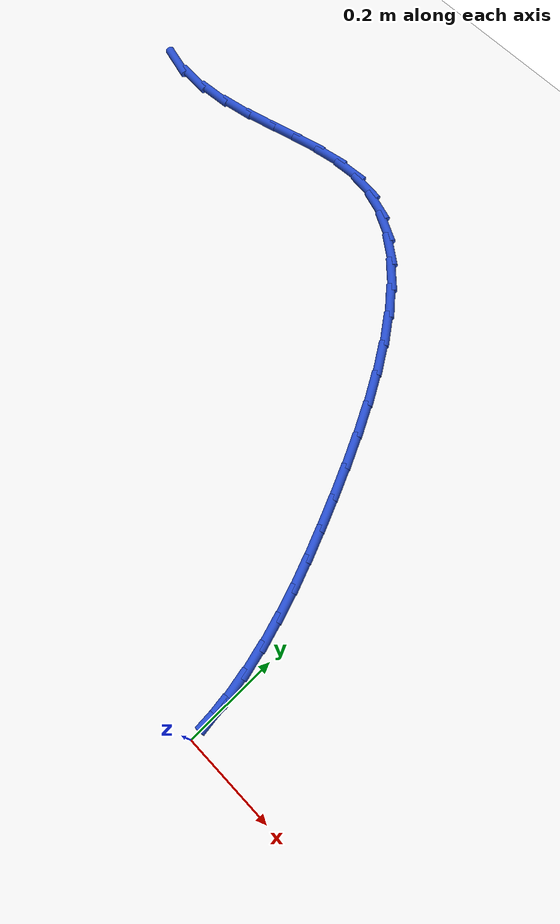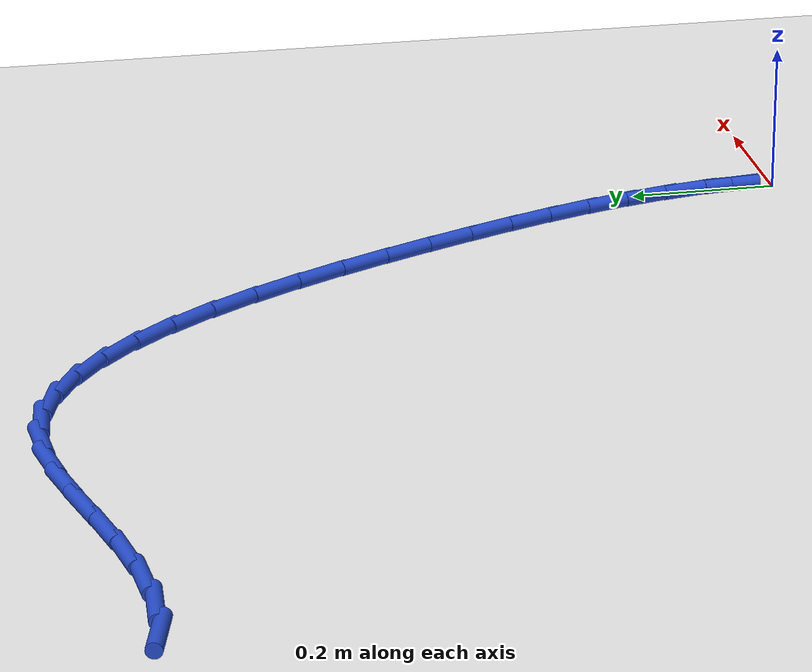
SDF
<sdf version="1.6">
 <world name="default">
  <model name="ground_plane">
   <static>1</static>
   <link name="link">
    <collision name="collision">
     <geometry><plane><normal>0 0 1</normal><size>100 100</size></plane></geometry>
     <surface><friction><ode><mu>100</mu><mu2>50</mu2></ode></friction></surface>
    </collision>
    <visual name="visual">
     <cast_shadows>0</cast_shadows>
     <geometry><plane><normal>0 0 1</normal><size>100 100</size></plane></geometry>
     <material>
      <script><uri>file://media/materials/scripts/gazebo.material</uri><name>Gazebo/WhiteGlow</name></script>
     </material>
    </visual>
   </link>
  </model>
  <model name="line">
   <link name="link_1">
    <pose>-0.0035688423297778197 0.06088104826335584 0.01 0 1.57 -1.443918203693152</pose>
    <collision name="collision">
     <geometry><cylinder><radius>0.01</radius><length>0.08</length></cylinder></geometry>
    </collision>
    <visual name="visual">
     <material>
      <script><name>Gazebo/Blue</name><uri>file://media/materials/scripts/gazebo.material</uri></script>
     </material>
     <geometry><cylinder><radius>0.01</radius><length>0.08</length></cylinder></geometry>
    </visual>
   </link>
   <link name="link_2">
    <pose>-0.011200592114224759 0.12070817577924842 0.01 0 1.57 -1.3806426510183325</pose>
    <collision name="collision">
     <geometry><cylinder><radius>0.01</radius><length>0.08</length></cylinder></geometry>
    </collision>
    <visual name="visual">
     <material>
      <script><name>Gazebo/Blue</name><uri>file://media/materials/scripts/gazebo.material</uri></script>
     </material>
     <geometry><cylinder><radius>0.01</radius><length>0.08</length></cylinder></geometry>
    </visual>
   </link>
   <link name="link_3">
    <pose>-0.02258803944772485 0.1798701382821757 0.01 0 1.57 -1.3239876869878886</pose>
    <collision name="collision">
     <geometry><cylinder><radius>0.01</radius><length>0.08</length></cylinder></geometry>
    </collision>
    <visual name="visual">
     <material>
      <script><name>Gazebo/Blue</name><uri>file://media/materials/scripts/gazebo.material</uri></script>
     </material>
     <geometry><cylinder><radius>0.01</radius><length>0.08</length></cylinder></geometry>
    </visual>
   </link>
   <link name="link_4">
    <pose>-0.03742397442466211 0.2387556915066354 0.01 0 1.57 -1.275024630975104</pose>
    <collision name="collision">
     <geometry><cylinder><radius>0.01</radius><length>0.08</length></cylinder></geometry>
    </collision>
    <visual name="visual">
     <material>
      <script><name>Gazebo/Blue</name><uri>file://media/materials/scripts/gazebo.material</uri></script>
     </material>
     <geometry><cylinder><radius>0.01</radius><length>0.08</length></cylinder></geometry>
    </visual>
   </link>
   <link name="link_5">
    <pose>-0.05540118713942063 0.29775359118712563 0.01 0 1.57 -1.2343217098206352</pose>
    <collision name="collision">
     <geometry><cylinder><radius>0.01</radius><length>0.08</length></cylinder></geometry>
    </collision>
    <visual name="visual">
     <material>
      <script><name>Gazebo/Blue</name><uri>file://media/materials/scripts/gazebo.material</uri></script>
     </material>
     <geometry><cylinder><radius>0.01</radius><length>0.08</length></cylinder></geometry>
    </visual>
   </link>
   <link name="link_6">
    <pose>-0.07621246768638443 0.3572525930581442 0.01 0 1.57 -1.20201283778323</pose>
    <collision name="collision">
     <geometry><cylinder><radius>0.01</radius><length>0.08</length></cylinder></geometry>
    </collision>
    <visual name="visual">
     <material>
      <script><name>Gazebo/Blue</name><uri>file://media/materials/scripts/gazebo.material</uri></script>
     </material>
     <geometry><cylinder><radius>0.01</radius><length>0.08</length></cylinder></geometry>
    </visual>
   </link>
   <link name="link_7">
    <pose>-0.09955060615993755 0.4176414528541889 0.01 0 1.57 -1.1778995721593792</pose>
    <collision name="collision">
     <geometry><cylinder><radius>0.01</radius><length>0.08</length></cylinder></geometry>
    </collision>
    <visual name="visual">
     <material>
      <script><name>Gazebo/Blue</name><uri>file://media/materials/scripts/gazebo.material</uri></script>
     </material>
     <geometry><cylinder><radius>0.01</radius><length>0.08</length></cylinder></geometry>
    </visual>
   </link>
   <link name="link_8">
    <pose>-0.12510839265446405 0.47930892630975763 0.01 0 1.57 -1.160877318969523</pose>
    <collision name="collision">
     <geometry><cylinder><radius>0.01</radius><length>0.08</length></cylinder></geometry>
    </collision>
    <visual name="visual">
     <material>
      <script><name>Gazebo/Blue</name><uri>file://media/materials/scripts/gazebo.material</uri></script>
     </material>
     <geometry><cylinder><radius>0.01</radius><length>0.08</length></cylinder></geometry>
    </visual>
   </link>
   <link name="link_9">
    <pose>-0.1525977696174257 0.5425705330250696 0.01 0 1.57 -1.1427305182679064</pose>
    <collision name="collision">
     <geometry><cylinder><radius>0.01</radius><length>0.08</length></cylinder></geometry>
    </collision>
    <visual name="visual">
     <material>
      <script><name>Gazebo/Blue</name><uri>file://media/materials/scripts/gazebo.material</uri></script>
     </material>
     <geometry><cylinder><radius>0.01</radius><length>0.08</length></cylinder></geometry>
    </visual>
   </link>
   <link name="link_10">
    <pose>-0.18195057743472196 0.6069009311729425 0.01 0 1.57 -1.1181446614235382</pose>
    <collision name="collision">
     <geometry><cylinder><radius>0.01</radius><length>0.08</length></cylinder></geometry>
    </collision>
    <visual name="visual">
     <material>
      <script><name>Gazebo/Blue</name><uri>file://media/materials/scripts/gazebo.material</uri></script>
     </material>
     <geometry><cylinder><radius>0.01</radius><length>0.08</length></cylinder></geometry>
    </visual>
   </link>
   <link name="link_11">
    <pose>-0.213239232003664 0.6712372362551564 0.01 0 1.57 -1.086332097581999</pose>
    <collision name="collision">
     <geometry><cylinder><radius>0.01</radius><length>0.08</length></cylinder></geometry>
    </collision>
    <visual name="visual">
     <material>
      <script><name>Gazebo/Blue</name><uri>file://media/materials/scripts/gazebo.material</uri></script>
     </material>
     <geometry><cylinder><radius>0.01</radius><length>0.08</length></cylinder></geometry>
    </visual>
   </link>
   <link name="link_12">
    <pose>-0.24653843468502495 0.7345078244552309 0.01 0 1.57 -1.0461044600099203</pose>
    <collision name="collision">
     <geometry><cylinder><radius>0.01</radius><length>0.08</length></cylinder></geometry>
    </collision>
    <visual name="visual">
     <material>
      <script><name>Gazebo/Blue</name><uri>file://media/materials/scripts/gazebo.material</uri></script>
     </material>
     <geometry><cylinder><radius>0.01</radius><length>0.08</length></cylinder></geometry>
    </visual>
   </link>
   <link name="link_13">
    <pose>-0.2819228868395777 0.7956410719566851 0.01 0 1.57 -0.9957132632600522</pose>
    <collision name="collision">
     <geometry><cylinder><radius>0.01</radius><length>0.08</length></cylinder></geometry>
    </collision>
    <visual name="visual">
     <material>
      <script><name>Gazebo/Blue</name><uri>file://media/materials/scripts/gazebo.material</uri></script>
     </material>
     <geometry><cylinder><radius>0.01</radius><length>0.08</length></cylinder></geometry>
    </visual>
   </link>
   <link name="link_14">
    <pose>-0.31946728982809575 0.8535653549430393 0.01 0 1.57 -0.9327303196576011</pose>
    <collision name="collision">
     <geometry><cylinder><radius>0.01</radius><length>0.08</length></cylinder></geometry>
    </collision>
    <visual name="visual">
     <material>
      <script><name>Gazebo/Blue</name><uri>file://media/materials/scripts/gazebo.material</uri></script>
     </material>
     <geometry><cylinder><radius>0.01</radius><length>0.08</length></cylinder></geometry>
    </visual>
   </link>
   <link name="link_15">
    <pose>-0.35924634501135183 0.9072090495978123 0.01 0 1.57 -0.8539240399595088</pose>
    <collision name="collision">
     <geometry><cylinder><radius>0.01</radius><length>0.08</length></cylinder></geometry>
    </collision>
    <visual name="visual">
     <material>
      <script><name>Gazebo/Blue</name><uri>file://media/materials/scripts/gazebo.material</uri></script>
     </material>
     <geometry><cylinder><radius>0.01</radius><length>0.08</length></cylinder></geometry>
    </visual>
   </link>
   <link name="link_16">
    <pose>-0.4013347537501192 0.9555005321045246 0.01 0 1.57 -0.7552380529867141</pose>
    <collision name="collision">
     <geometry><cylinder><radius>0.01</radius><length>0.08</length></cylinder></geometry>
    </collision>
    <visual name="visual">
     <material>
      <script><name>Gazebo/Blue</name><uri>file://media/materials/scripts/gazebo.material</uri></script>
     </material>
     <geometry><cylinder><radius>0.01</radius><length>0.08</length></cylinder></geometry>
    </visual>
   </link>
   <link name="link_17">
    <pose>-0.4458072174051708 0.9973681786466941 0.01 0 1.57 -0.632138317732221</pose>
    <collision name="collision">
     <geometry><cylinder><radius>0.01</radius><length>0.08</length></cylinder></geometry>
    </collision>
    <visual name="visual">
     <material>
      <script><name>Gazebo/Blue</name><uri>file://media/materials/scripts/gazebo.material</uri></script>
     </material>
     <geometry><cylinder><radius>0.01</radius><length>0.08</length></cylinder></geometry>
    </visual>
   </link>
   <link name="link_18">
    <pose>-0.4927384373372801 1.0317403654078425 0.01 0 1.57 -0.4808466831571427</pose>
    <collision name="collision">
     <geometry><cylinder><radius>0.01</radius><length>0.08</length></cylinder></geometry>
    </collision>
    <visual name="visual">
     <material>
      <script><name>Gazebo/Blue</name><uri>file://media/materials/scripts/gazebo.material</uri></script>
     </material>
     <geometry><cylinder><radius>0.01</radius><length>0.08</length></cylinder></geometry>
    </visual>
   </link>
   <link name="link_19">
    <pose>-0.5422031149072198 1.0575454685714876 0.01 0 1.57 -0.3010228839221934</pose>
    <collision name="collision">
     <geometry><cylinder><radius>0.01</radius><length>0.08</length></cylinder></geometry>
    </collision>
    <visual name="visual">
     <material>
      <script><name>Gazebo/Blue</name><uri>file://media/materials/scripts/gazebo.material</uri></script>
     </material>
     <geometry><cylinder><radius>0.01</radius><length>0.08</length></cylinder></geometry>
    </visual>
   </link>
   <link name="link_20">
    <pose>-0.5942759514757633 1.0737118643211496 0.01 0 1.57 -0.10092084948807266</pose>
    <collision name="collision">
     <geometry><cylinder><radius>0.01</radius><length>0.08</length></cylinder></geometry>
    </collision>
    <visual name="visual">
     <material>
      <script><name>Gazebo/Blue</name><uri>file://media/materials/scripts/gazebo.material</uri></script>
     </material>
     <geometry><cylinder><radius>0.01</radius><length>0.08</length></cylinder></geometry>
    </visual>
   </link>
   <link name="link_21">
    <pose>-0.6490210136493467 1.0792556163641158 0.01 0 1.57 0.07305467560906422</pose>
    <collision name="collision">
     <geometry><cylinder><radius>0.01</radius><length>0.08</length></cylinder></geometry>
    </collision>
    <visual name="visual">
     <material>
      <script><name>Gazebo/Blue</name><uri>file://media/materials/scripts/gazebo.material</uri></script>
     </material>
     <geometry><cylinder><radius>0.01</radius><length>0.08</length></cylinder></geometry>
    </visual>
   </link>
   <link name="link_22">
    <pose>-0.7062752489819636 1.0750654698705435 0.01 0 1.57 0.18705763154934912</pose>
    <collision name="collision">
     <geometry><cylinder><radius>0.01</radius><length>0.08</length></cylinder></geometry>
    </collision>
    <visual name="visual">
     <material>
      <script><name>Gazebo/Blue</name><uri>file://media/materials/scripts/gazebo.material</uri></script>
     </material>
     <geometry><cylinder><radius>0.01</radius><length>0.08</length></cylinder></geometry>
    </visual>
   </link>
   <link name="link_23">
    <pose>-0.7656577926273892 1.063826114647935 0.01 0 1.57 0.24884361131792415</pose>
    <collision name="collision">
     <geometry><cylinder><radius>0.01</radius><length>0.08</length></cylinder></geometry>
    </collision>
    <visual name="visual">
     <material>
      <script><name>Gazebo/Blue</name><uri>file://media/materials/scripts/gazebo.material</uri></script>
     </material>
     <geometry><cylinder><radius>0.01</radius><length>0.08</length></cylinder></geometry>
    </visual>
   </link>
   <link name="link_24">
    <pose>-0.8267790073370289 1.048294572239626 0.01 0 1.57 0.26668955570005376</pose>
    <collision name="collision">
     <geometry><cylinder><radius>0.01</radius><length>0.08</length></cylinder></geometry>
    </collision>
    <visual name="visual">
     <material>
      <script><name>Gazebo/Blue</name><uri>file://media/materials/scripts/gazebo.material</uri></script>
     </material>
     <geometry><cylinder><radius>0.01</radius><length>0.08</length></cylinder></geometry>
    </visual>
   </link>
   <link name="link_25">
    <pose>-0.8892492558622874 1.0312278641889505 0.01 0 1.57 0.24479230070964125</pose>
    <collision name="collision">
     <geometry><cylinder><radius>0.01</radius><length>0.08</length></cylinder></geometry>
    </collision>
    <visual name="visual">
     <material>
      <script><name>Gazebo/Blue</name><uri>file://media/materials/scripts/gazebo.material</uri></script>
     </material>
     <geometry><cylinder><radius>0.01</radius><length>0.08</length></cylinder></geometry>
    </visual>
   </link>
   <link name="link_26">
    <pose>-0.9526789009545699 1.015383012039245 0.01 0 1.57 0.18332582986292262</pose>
    <collision name="collision">
     <geometry><cylinder><radius>0.01</radius><length>0.08</length></cylinder></geometry>
    </collision>
    <visual name="visual">
     <material>
      <script><name>Gazebo/Blue</name><uri>file://media/materials/scripts/gazebo.material</uri></script>
     </material>
     <geometry><cylinder><radius>0.01</radius><length>0.08</length></cylinder></geometry>
    </visual>
   </link>
   <link name="link_27">
    <pose>-1.0166783053652813 1.003517037333844 0.01 0 1.57 0.07976362241833795</pose>
    <collision name="collision">
     <geometry><cylinder><radius>0.01</radius><length>0.08</length></cylinder></geometry>
    </collision>
    <visual name="visual">
     <material>
      <script><name>Gazebo/Blue</name><uri>file://media/materials/scripts/gazebo.material</uri></script>
     </material>
     <geometry><cylinder><radius>0.01</radius><length>0.08</length></cylinder></geometry>
    </visual>
   </link>
   <link name="link_28">
    <pose>-1.0808578318458264 0.9983869616160826 0.01 0 1.57 -0.06809595697780514</pose>
    <collision name="collision">
     <geometry><cylinder><radius>0.01</radius><length>0.08</length></cylinder></geometry>
    </collision>
    <visual name="visual">
     <material>
      <script><name>Gazebo/Blue</name><uri>file://media/materials/scripts/gazebo.material</uri></script>
     </material>
     <geometry><cylinder><radius>0.01</radius><length>0.08</length></cylinder></geometry>
    </visual>
   </link>
   <link name="link_29">
    <pose>-1.1448278431476102 1.002749806429296 0.01 0 1.57 -0.25510766039937227</pose>
    <collision name="collision">
     <geometry><cylinder><radius>0.01</radius><length>0.08</length></cylinder></geometry>
    </collision>
    <visual name="visual">
     <material>
      <script><name>Gazebo/Blue</name><uri>file://media/materials/scripts/gazebo.material</uri></script>
     </material>
     <geometry><cylinder><radius>0.01</radius><length>0.08</length></cylinder></geometry>
    </visual>
   </link>
   <link name="link_121">
    <pose>-0.003629884020538505 0.060707855815041886 0.01 0 1.57 -1.5110747731366387</pose>
    <collision name="collision">
     <geometry><cylinder><radius>0.01</radius><length>0.08</length></cylinder></geometry>
    </collision>
    <visual name="visual">
     <material>
      <script><name>Gazebo/Blue</name><uri>file://media/materials/scripts/gazebo.material</uri></script>
     </material>
     <geometry><cylinder><radius>0.01</radius><length>0.08</length></cylinder></geometry>
    </visual>
   </link>
  </model>
 </world>
</sdf>
